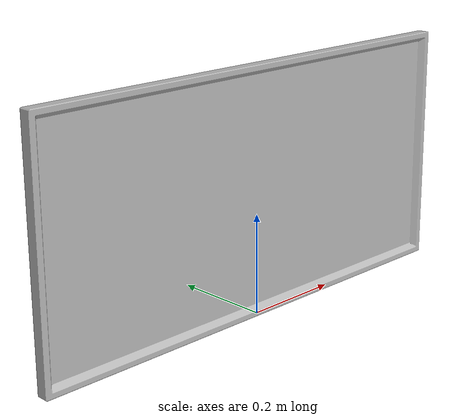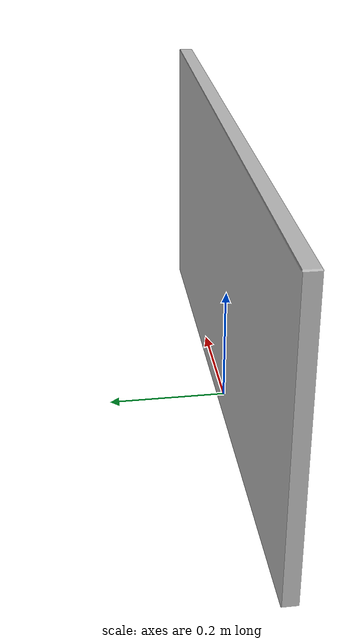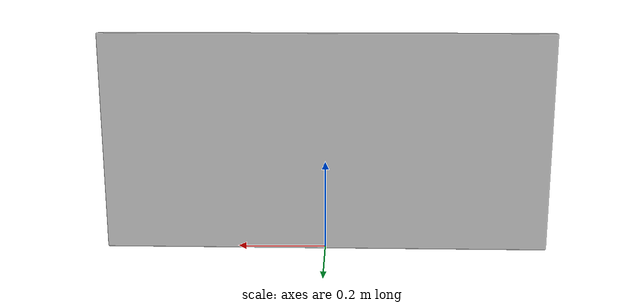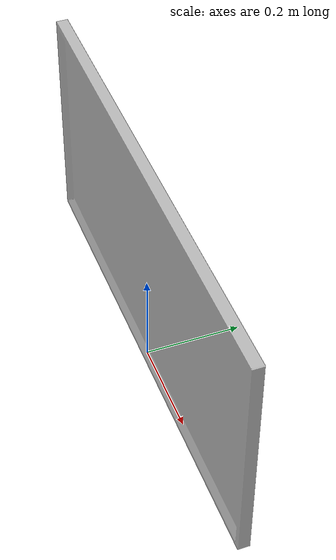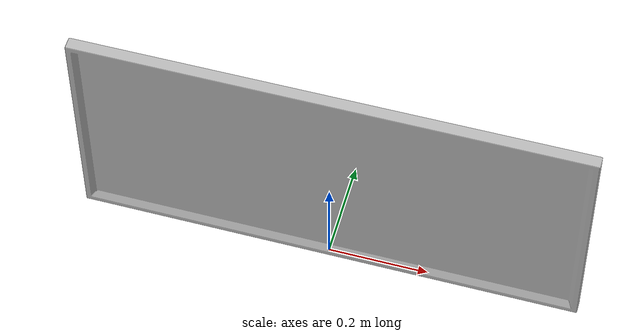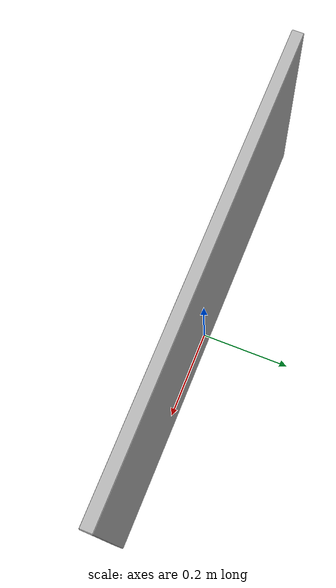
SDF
<?xml version="1.0" ?>
<sdf version="1.6">
  <model name="photo_c">
    <link name="link">
      <inertial>
        <mass>1.5</mass>
      </inertial>
      <collision name="collision">
        <geometry>
          <!-- 가로 100cm 높이 49cm 두께 4.4cm -->
          <box><size>1.0 0.045 0.5</size></box>
        </geometry>
      </collision>
      <visual name="visual">
        <geometry>
          <mesh>
            <uri>model://photo_c/meshes/my_photo_frame3_visual.DAE</uri>
          </mesh>
        </geometry>
      <meta> <layer> 2 </layer></meta>
</visual>
    </link>
	<static>1</static>
  </model>
</sdf>
